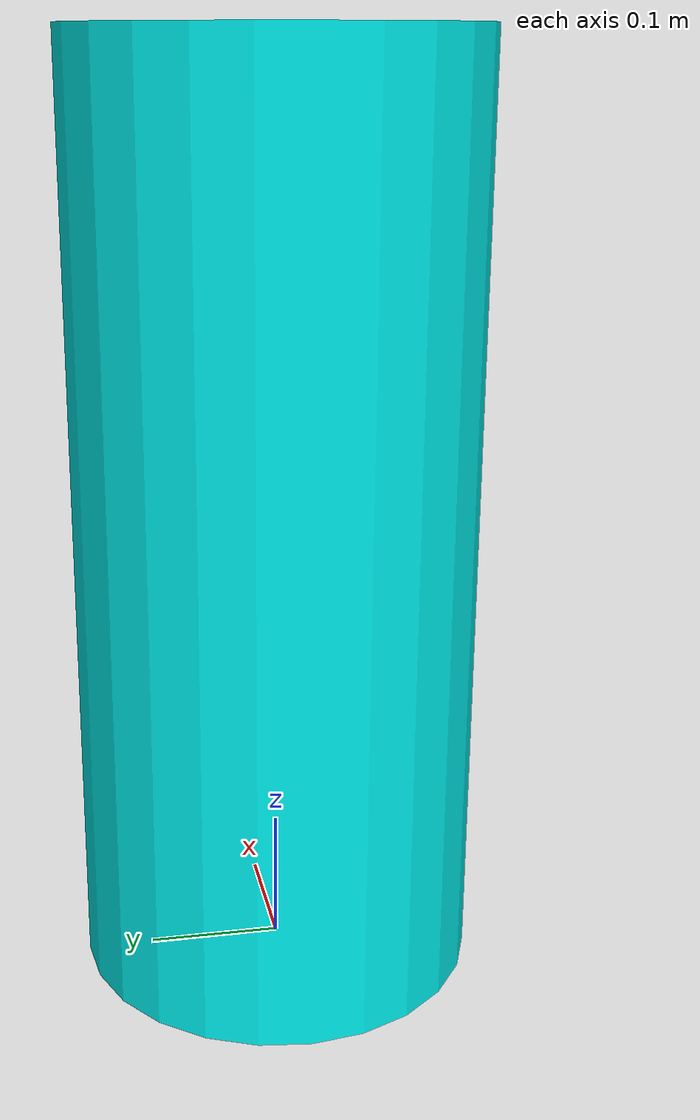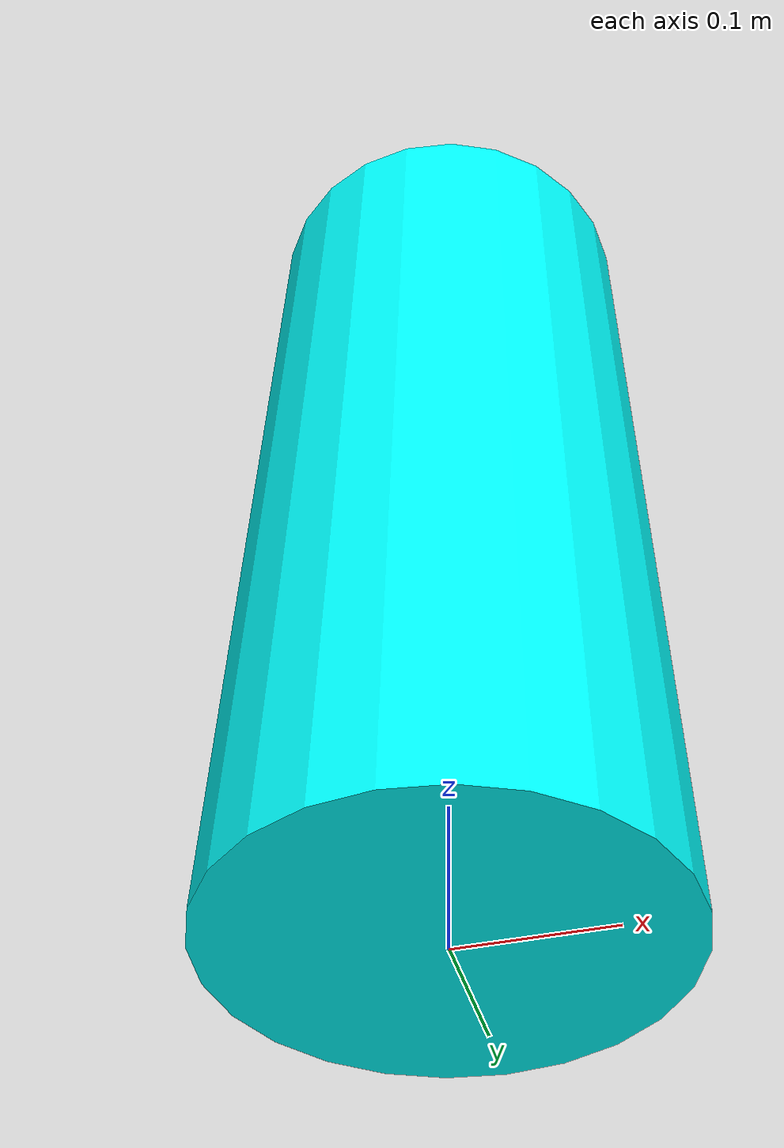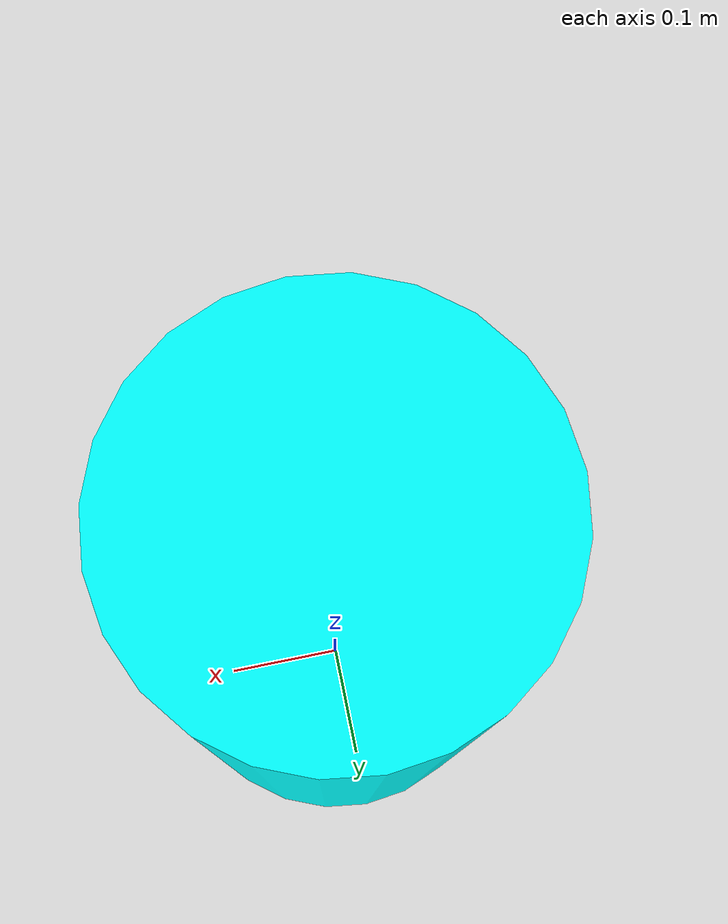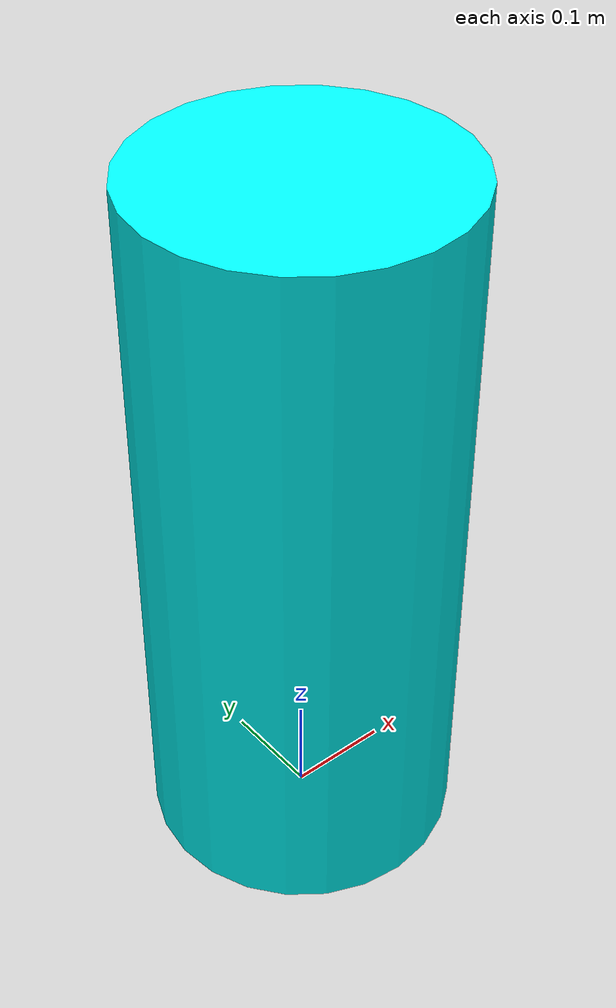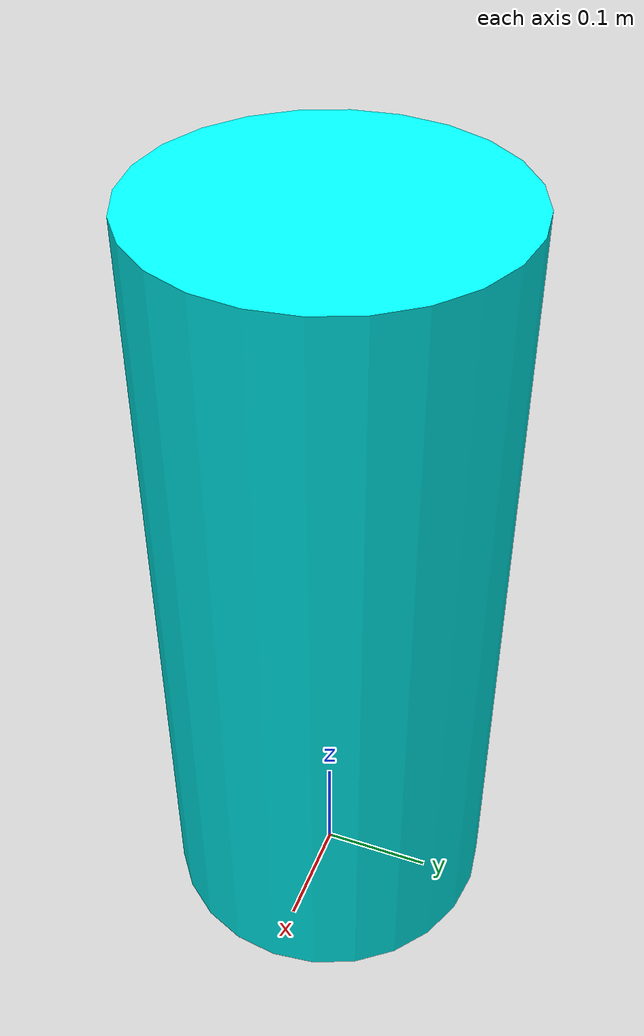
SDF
<?xml version="1.0" ?>
<sdf version="1.6">
  <model name="cylinder_obstacle">
    <static>true</static>
    <link name="link">
      <pose>0 0 0.35 0 0 0</pose> <!-- z=0.5로 해서 지면 위에 올리기 -->
      <collision name="collision">
        <geometry>
          <cylinder>
            <radius>0.1</radius>
            <length>0.7</length>
          </cylinder>
        </geometry>
      </collision>
      <visual name="visual">
        <geometry>
          <cylinder>
            <radius>0.15</radius>
            <length>0.7</length>
          </cylinder>
        </geometry>
        <material>
          <ambient>0 1 1 1</ambient> <!-- 청록색 -->
        </material>
      </visual>
    </link>
  </model>
</sdf>
